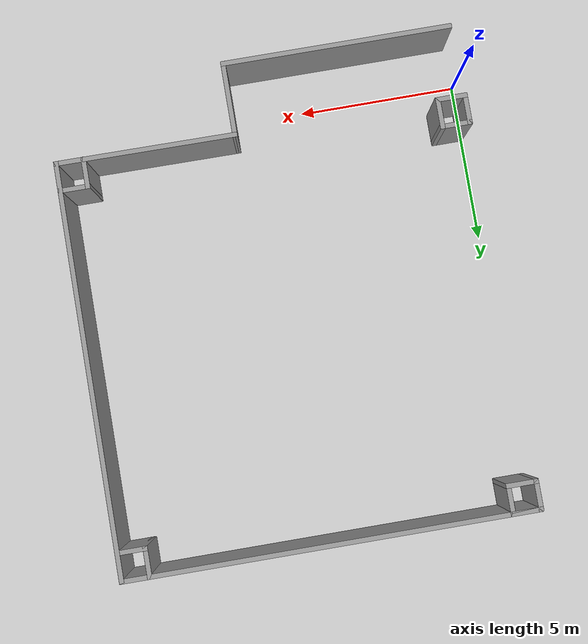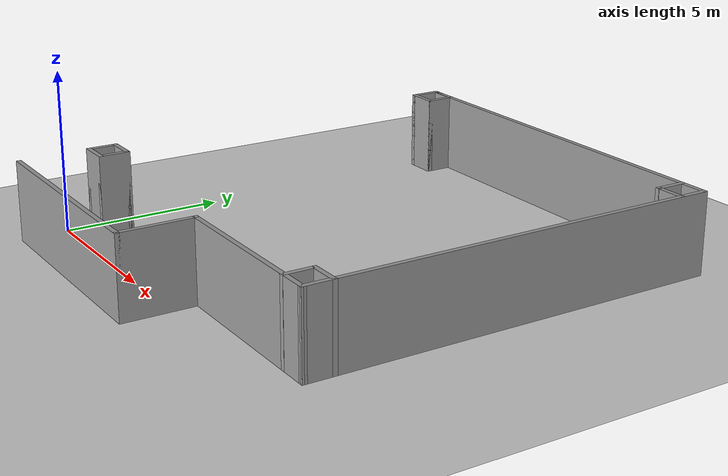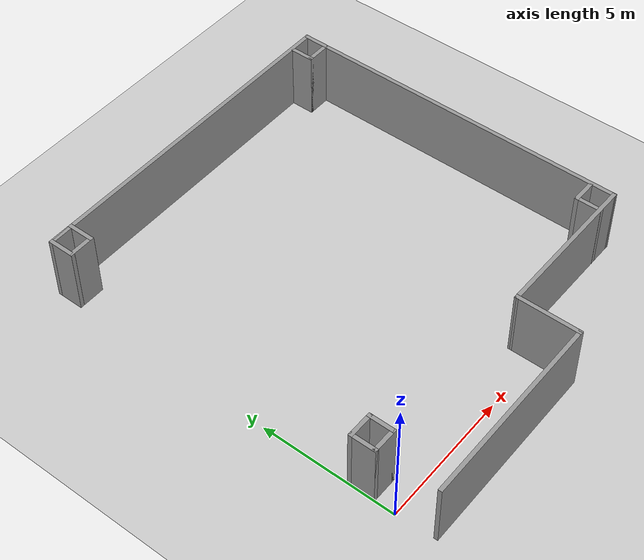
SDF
<sdf version="1.7">
 <world name="default">
  <light name="sun" type="directional">
   <pose>0 0 10 0 -0 0</pose>
   <diffuse>0.8 0.8 0.8 1</diffuse>
   <specular>0.2 0.2 0.2 1</specular>
   <attenuation>
    <range>1000</range>
    <constant>0.9</constant>
    <linear>0.01</linear>
    <quadratic>0.001</quadratic>
   </attenuation>
   <direction>-0.5 0.1 -0.9</direction>
   <spot><inner_angle>0</inner_angle><outer_angle>0</outer_angle><falloff>0</falloff></spot>
  </light>
  <model name="ground_plane">
   <static>1</static>
   <link name="link">
    <collision name="collision">
     <geometry><plane><normal>0 0 1</normal><size>100 100</size></plane></geometry>
     <surface>
      <contact><collide_bitmask>65535</collide_bitmask></contact>
      <friction><ode><mu>100</mu><mu2>50</mu2></ode></friction>
     </surface>
    </collision>
    <visual name="visual">
     <cast_shadows>0</cast_shadows>
     <geometry><plane><normal>0 0 1</normal><size>100 100</size></plane></geometry>
     <material>
      <script><uri>file://media/materials/scripts/gazebo.material</uri><name>Gazebo/Grey</name></script>
     </material>
    </visual>
   </link>
  </model>
  <gravity>0 0 -9.8</gravity>
  <magnetic_field>6e-06 2.3e-05 -4.2e-05</magnetic_field>
  <atmosphere type="adiabatic"/>
  <physics type="ode">
   <max_step_size>0.001</max_step_size>
   <real_time_factor>1</real_time_factor>
   <real_time_update_rate>1000</real_time_update_rate>
  </physics>
  <scene><ambient>0.4 0.4 0.4 1</ambient><background>0.7 0.7 0.7 1</background><shadows>1</shadows></scene>
  <spherical_coordinates>
   <surface_model>EARTH_WGS84</surface_model>
   <latitude_deg>0</latitude_deg>
   <longitude_deg>0</longitude_deg>
   <elevation>0</elevation>
   <heading_deg>0</heading_deg>
  </spherical_coordinates>
  <model name="bookstackmap">
   <pose>6.42472 6.11978 0 0 -0 0</pose>
   <link name="Wall_100">
    <collision name="Wall_100_Collision">
     <geometry><box><size>1 0.15 2.5</size></box></geometry>
     <pose>0 0 1.25 0 -0 0</pose>
    </collision>
    <visual name="Wall_100_Visual">
     <pose>0 0 1.25 0 -0 0</pose>
     <geometry><box><size>1 0.15 2.5</size></box></geometry>
     <material>
      <script><uri>file://media/materials/scripts/gazebo.material</uri><name>Gazebo/Grey</name></script>
      <ambient>1 1 1 1</ambient>
     </material>
     <meta><layer>0</layer></meta>
    </visual>
    <pose>-5.95017 6.6677 0 0 -0 3.14159</pose>
   </link>
   <link name="Wall_103">
    <collision name="Wall_103_Collision">
     <geometry><box><size>1 0.15 2.5</size></box></geometry>
     <pose>0 0 1.25 0 -0 0</pose>
    </collision>
    <visual name="Wall_103_Visual">
     <pose>0 0 1.25 0 -0 0</pose>
     <geometry><box><size>1 0.15 2.5</size></box></geometry>
     <material>
      <script><uri>file://media/materials/scripts/gazebo.material</uri><name>Gazebo/Grey</name></script>
      <ambient>1 1 1 1</ambient>
     </material>
     <meta><layer>0</layer></meta>
    </visual>
    <pose>5.52483 7.0927 0 0 -0 -1.5708</pose>
   </link>
   <link name="Wall_104">
    <collision name="Wall_104_Collision">
     <geometry><box><size>1 0.15 2.5</size></box></geometry>
     <pose>0 0 1.25 0 -0 0</pose>
    </collision>
    <visual name="Wall_104_Visual">
     <pose>0 0 1.25 0 -0 0</pose>
     <geometry><box><size>1 0.15 2.5</size></box></geometry>
     <material>
      <script><uri>file://media/materials/scripts/gazebo.material</uri><name>Gazebo/Grey</name></script>
      <ambient>1 1 1 1</ambient>
     </material>
     <meta><layer>0</layer></meta>
    </visual>
    <pose>5.94983 6.6677 0 0 -0 0</pose>
   </link>
   <link name="Wall_107">
    <collision name="Wall_107_Collision">
     <geometry><box><size>1 0.15 2.5</size></box></geometry>
     <pose>0 0 1.25 0 -0 0</pose>
    </collision>
    <visual name="Wall_107_Visual">
     <pose>0 0 1.25 0 -0 0</pose>
     <geometry><box><size>1 0.15 2.5</size></box></geometry>
     <material>
      <script><uri>file://media/materials/scripts/gazebo.material</uri><name>Gazebo/Grey</name></script>
      <ambient>1 1 1 1</ambient>
     </material>
     <meta><layer>0</layer></meta>
    </visual>
    <pose>5.94983 -4.4423 0 0 -0 3.14159</pose>
   </link>
   <link name="Wall_108">
    <collision name="Wall_108_Collision">
     <geometry><box><size>1 0.15 2.5</size></box></geometry>
     <pose>0 0 1.25 0 -0 0</pose>
    </collision>
    <visual name="Wall_108_Visual">
     <pose>0 0 1.25 0 -0 0</pose>
     <geometry><box><size>1 0.15 2.5</size></box></geometry>
     <material>
      <script><uri>file://media/materials/scripts/gazebo.material</uri><name>Gazebo/Grey</name></script>
      <ambient>1 1 1 1</ambient>
     </material>
     <meta><layer>0</layer></meta>
    </visual>
    <pose>5.52483 -4.8673 0 0 -0 -1.5708</pose>
   </link>
   <link name="Wall_110">
    <collision name="Wall_110_Collision">
     <geometry><box><size>1 0.15 2.5</size></box></geometry>
     <pose>0 0 1.25 0 -0 0</pose>
    </collision>
    <visual name="Wall_110_Visual">
     <pose>0 0 1.25 0 -0 0</pose>
     <geometry><box><size>1 0.15 2.5</size></box></geometry>
     <material>
      <script><uri>file://media/materials/scripts/gazebo.material</uri><name>Gazebo/Grey</name></script>
      <ambient>1 1 1 1</ambient>
     </material>
     <meta><layer>0</layer></meta>
    </visual>
    <pose>-6.37517 7.0927 0 0 -0 -1.5708</pose>
   </link>
   <link name="Wall_78">
    <collision name="Wall_78_Collision">
     <geometry><box><size>12.9 0.15 2.5</size></box></geometry>
     <pose>0 0 1.25 0 -0 0</pose>
    </collision>
    <visual name="Wall_78_Visual">
     <pose>0 0 1.25 0 -0 0</pose>
     <geometry><box><size>12.9 0.15 2.5</size></box></geometry>
     <material>
      <script><uri>file://media/materials/scripts/gazebo.material</uri><name>Gazebo/Grey</name></script>
      <ambient>1 1 1 1</ambient>
     </material>
     <meta><layer>0</layer></meta>
    </visual>
    <pose>-0.000166 7.5177 0 0 -0 0</pose>
   </link>
   <link name="Wall_85">
    <collision name="Wall_85_Collision">
     <geometry><box><size>12.96 0.15 2.5</size></box></geometry>
     <pose>0 0 1.25 0 -0 0</pose>
    </collision>
    <visual name="Wall_85_Visual">
     <pose>0 0 1.25 0 -0 0</pose>
     <geometry><box><size>12.96 0.15 2.5</size></box></geometry>
     <material>
      <script><uri>file://media/materials/scripts/gazebo.material</uri><name>Gazebo/Grey</name></script>
      <ambient>1 1 1 1</ambient>
     </material>
     <meta><layer>0</layer></meta>
    </visual>
    <pose>6.37483 1.1127 0 0 -0 -1.5708</pose>
   </link>
   <link name="Wall_87">
    <collision name="Wall_87_Collision">
     <geometry><box><size>5.70826 0.15 2.5</size></box></geometry>
     <pose>0 0 1.25 0 -0 0</pose>
    </collision>
    <visual name="Wall_87_Visual">
     <pose>0 0 1.25 0 -0 0</pose>
     <geometry><box><size>5.70826 0.15 2.5</size></box></geometry>
     <material>
      <script><uri>file://media/materials/scripts/gazebo.material</uri><name>Gazebo/Grey</name></script>
      <ambient>1 1 1 1</ambient>
     </material>
     <meta><layer>0</layer></meta>
    </visual>
    <pose>3.59573 -5.28 0 0 -0 3.13717</pose>
   </link>
   <link name="Wall_89">
    <collision name="Wall_89_Collision">
     <geometry><box><size>2.4 0.15 2.5</size></box></geometry>
     <pose>0 0 1.25 0 -0 0</pose>
    </collision>
    <visual name="Wall_89_Visual">
     <pose>0 0 1.25 0 -0 0</pose>
     <geometry><box><size>2.4 0.15 2.5</size></box></geometry>
     <material>
      <script><uri>file://media/materials/scripts/gazebo.material</uri><name>Gazebo/Grey</name></script>
      <ambient>1 1 1 1</ambient>
     </material>
     <meta><layer>0</layer></meta>
    </visual>
    <pose>0.816634 -6.3927 0 0 -0 -1.5708</pose>
   </link>
   <link name="Wall_91">
    <collision name="Wall_91_Collision">
     <geometry><box><size>7.25 0.15 2.5</size></box></geometry>
     <pose>0 0 1.25 0 -0 0</pose>
    </collision>
    <visual name="Wall_91_Visual">
     <pose>0 0 1.25 0 -0 0</pose>
     <geometry><box><size>7.25 0.15 2.5</size></box></geometry>
     <material>
      <script><uri>file://media/materials/scripts/gazebo.material</uri><name>Gazebo/Grey</name></script>
      <ambient>1 1 1 1</ambient>
     </material>
     <meta><layer>0</layer></meta>
    </visual>
    <pose>-2.73337 -7.5177 0 0 -0 3.14159</pose>
   </link>
   <link name="Wall_93">
    <collision name="Wall_93_Collision">
     <geometry><box><size>1 0.15 2.5</size></box></geometry>
     <pose>0 0 1.25 0 -0 0</pose>
    </collision>
    <visual name="Wall_93_Visual">
     <pose>0 0 1.25 0 -0 0</pose>
     <geometry><box><size>1 0.15 2.5</size></box></geometry>
     <material>
      <script><uri>file://media/materials/scripts/gazebo.material</uri><name>Gazebo/Grey</name></script>
      <ambient>1 1 1 1</ambient>
     </material>
     <meta><layer>0</layer></meta>
    </visual>
    <pose>-5.95017 -5.2923 0 0 -0 0</pose>
   </link>
   <link name="Wall_94">
    <collision name="Wall_94_Collision">
     <geometry><box><size>1 0.15 2.5</size></box></geometry>
     <pose>0 0 1.25 0 -0 0</pose>
    </collision>
    <visual name="Wall_94_Visual">
     <pose>0 0 1.25 0 -0 0</pose>
     <geometry><box><size>1 0.15 2.5</size></box></geometry>
     <material>
      <script><uri>file://media/materials/scripts/gazebo.material</uri><name>Gazebo/Grey</name></script>
      <ambient>1 1 1 1</ambient>
     </material>
     <meta><layer>0</layer></meta>
    </visual>
    <pose>-5.52517 -4.8673 0 0 -0 1.5708</pose>
   </link>
   <link name="Wall_95">
    <collision name="Wall_95_Collision">
     <geometry><box><size>1 0.15 2.5</size></box></geometry>
     <pose>0 0 1.25 0 -0 0</pose>
    </collision>
    <visual name="Wall_95_Visual">
     <pose>0 0 1.25 0 -0 0</pose>
     <geometry><box><size>1 0.15 2.5</size></box></geometry>
     <material>
      <script><uri>file://media/materials/scripts/gazebo.material</uri><name>Gazebo/Grey</name></script>
      <ambient>1 1 1 1</ambient>
     </material>
     <meta><layer>0</layer></meta>
    </visual>
    <pose>-5.95017 -4.4423 0 0 -0 3.14159</pose>
   </link>
   <link name="Wall_96">
    <collision name="Wall_96_Collision">
     <geometry><box><size>1 0.15 2.5</size></box></geometry>
     <pose>0 0 1.25 0 -0 0</pose>
    </collision>
    <visual name="Wall_96_Visual">
     <pose>0 0 1.25 0 -0 0</pose>
     <geometry><box><size>1 0.15 2.5</size></box></geometry>
     <material>
      <script><uri>file://media/materials/scripts/gazebo.material</uri><name>Gazebo/Grey</name></script>
      <ambient>1 1 1 1</ambient>
     </material>
     <meta><layer>0</layer></meta>
    </visual>
    <pose>-6.37517 -4.8673 0 0 -0 -1.5708</pose>
   </link>
   <link name="Wall_98">
    <collision name="Wall_98_Collision">
     <geometry><box><size>1 0.15 2.5</size></box></geometry>
     <pose>0 0 1.25 0 -0 0</pose>
    </collision>
    <visual name="Wall_98_Visual">
     <pose>0 0 1.25 0 -0 0</pose>
     <geometry><box><size>1 0.15 2.5</size></box></geometry>
     <material>
      <script><uri>file://media/materials/scripts/gazebo.material</uri><name>Gazebo/Grey</name></script>
      <ambient>1 1 1 1</ambient>
     </material>
     <meta><layer>0</layer></meta>
    </visual>
    <pose>-5.95017 7.5177 0 0 -0 0</pose>
   </link>
   <link name="Wall_99">
    <collision name="Wall_99_Collision">
     <geometry><box><size>1 0.15 2.5</size></box></geometry>
     <pose>0 0 1.25 0 -0 0</pose>
    </collision>
    <visual name="Wall_99_Visual">
     <pose>0 0 1.25 0 -0 0</pose>
     <geometry><box><size>1 0.15 2.5</size></box></geometry>
     <material>
      <script><uri>file://media/materials/scripts/gazebo.material</uri><name>Gazebo/Grey</name></script>
      <ambient>1 1 1 1</ambient>
     </material>
     <meta><layer>0</layer></meta>
    </visual>
    <pose>-5.52517 7.0927 0 0 -0 -1.5708</pose>
   </link>
   <static>1</static>
  </model>
 </world>
</sdf>
